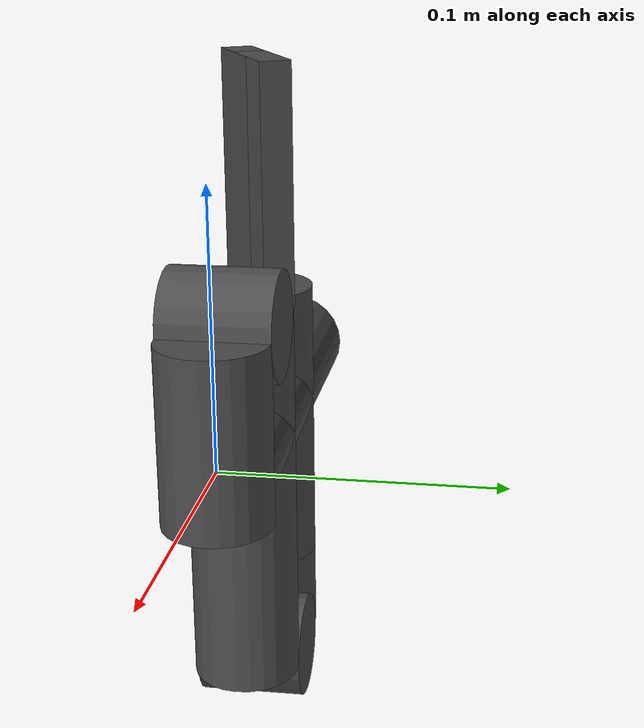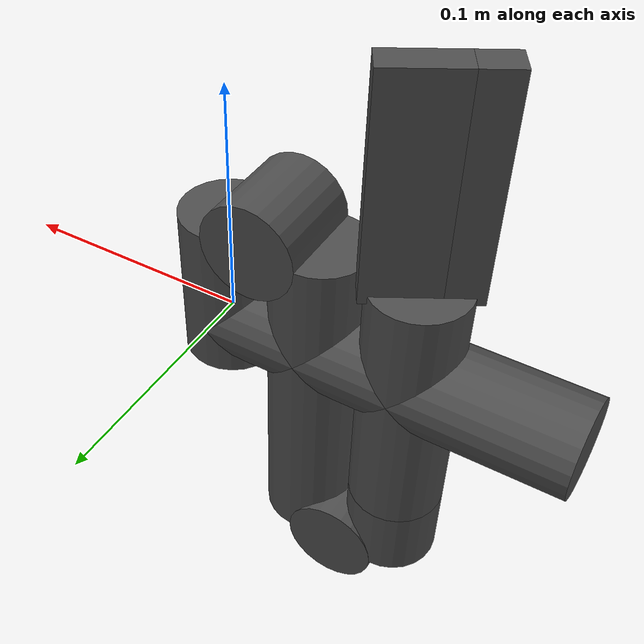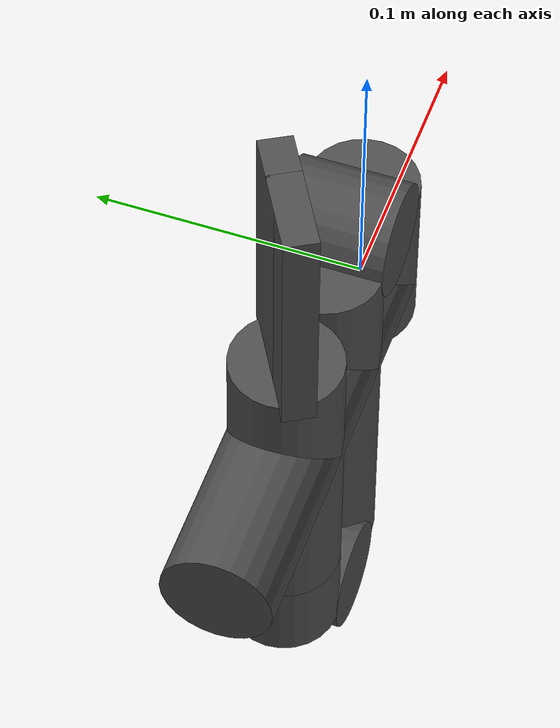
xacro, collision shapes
<?xml version="1.0"?>
<!-- Revolute-Revolute Manipulator -->
<!--
Copied and modified from ROS1 example -
https://github.com/ros-simulation/gazebo_ros_demos/blob/kinetic-devel/rrbot_description/urdf/rrbot.xacro
-->
<robot xmlns:xacro="http://www.ros.org/wiki/xacro" name="alpha_5_example">

  <!-- Enable setting arguments from the launch file -->
  <xacro:arg name="use_mock_hardware" default="false" />
  <xacro:arg name="prefix" default="alpha" />
  <xacro:arg name="slowdown" default="100.0" />
  <xacro:arg name="serial_port" default="/dev/ttyUSB0"/>
  <xacro:arg name="state_update_frequency" default="250"/>

  <!-- Import RRBot macro -->
  <xacro:include filename="$(find ros2_control_reach_5)/urdf/alpha_5.urdf.xacro"/>

  <!-- Import RRBot ros2_control description -->
  <xacro:include filename="$(find ros2_control_reach_5)/ros2_control/robot_system_multi_interface.ros2_control.xacro" />

  <!-- Used for fixing robot -->
  <link name="base_link"/>

  <xacro:alpha_5 parent="base_link" name="$(arg prefix)">
    <origin xyz="0 0 0" rpy="0 0 0" />
  </xacro:alpha_5>

  <xacro:robot_system_multi_interface
    name="ReachSystemMultiInterface"
    prefix="$(arg prefix)"
    serial_port="$(arg serial_port)"
    state_update_frequency="$(arg state_update_frequency)"
    use_mock_hardware="$(arg use_mock_hardware)"
    slowdown="$(arg slowdown)" />

</robot>

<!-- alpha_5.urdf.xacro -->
<robot name="alpha_5" xmlns:xacro="http://ros.org/wiki/xacro">
    <xacro:macro name="alpha_5" params="parent *origin name:=alpha_5">
        <joint name="${name}_joint" type="fixed">
            <xacro:insert_block name="origin" />
            <parent link="${parent}"/>
            <child link="${name}_base_link" />
        </joint>

        <material name="alpha_black">
            <color rgba="0.3 0.3 0.3 1"/>
        </material>
        <link name="${name}_base_link"/>
        <link name="${name}_m3_inline_link">
            <inertial>
                <origin xyz="-75e-3 -6e-3 -3e-3" rpy="0 0 0"/>
                <mass value="0.341"/>
                <inertia ixx="83.66e-6"  ixy="14.45e-6"  ixz="-38.270e-6" iyy="998.81e-6" iyz="3.14e-6" izz="1003.60e-6" />
            </inertial>
            <visual>
                <geometry>
                    <mesh filename="package://ros2_control_reach_5/meshes/M3-INLINE.stl"/>
                </geometry>
                <origin rpy="0 0 0" xyz="0 0 0"/>
                <material name="alpha_black"/>
            </visual>
            <collision>
                <geometry>
                    <cylinder length="0.150" radius="0.020" />
                </geometry>
                <origin rpy="0 1.57075 0" xyz="-0.075 0 0" />
            </collision>

        </link>
        <joint name="${name}_base_link_joint" type="fixed">
            <parent link="${name}_base_link"/>
            <child link="${name}_m3_inline_link"/>
            <origin rpy="0 0 0"/>
        </joint>
        <link name="${name}_m2_1_1_link">
            <inertial>
                <origin xyz="0.042 0.009 0.142" rpy="0 0 0"/>
                <mass value="0.194"/>
                <inertia ixx="8.000"  ixy="-0.283"  ixz="0.289" iyy="7.922" iyz="0.074" izz="0.318" />
            </inertial>
            <visual>
                <geometry>
                    <mesh filename="package://ros2_control_reach_5/meshes/M2-1-1.stl"/>
                </geometry>
                <origin rpy="0 0 0" xyz="0 0 0"/>
                <material name="${name}_black"/>
            </visual>
            <collision>
                <geometry>
                    <cylinder length="0.066" radius="0.020" />
                </geometry>
                <origin rpy="0 0 0" xyz="0 0 0.000" />
            </collision>
        </link>
        <joint name="${name}_axis_e" type="revolute">
            <parent link="${name}_m3_inline_link"/>
            <child link="${name}_m2_1_1_link"/>
            <origin xyz="0 0 0.014"/>
            <axis xyz="0 0 1"/>
            <limit effort="9.0" lower="0.0" upper="6.3" velocity="0.5"/>
        </joint>
        <link name="${name}_m2_joint_link">
            <inertial>
                <origin xyz="0.013 -0.003 -0.021" rpy="0 0 0"/>
                <mass value="0.429"/>
                <inertia ixx="0.795"  ixy="-2.240"  ixz="0.412" iyy="0.574" iyz="-0.359" izz="0.511" />
            </inertial>
            <visual>
                <geometry>
                    <mesh filename="package://ros2_control_reach_5/meshes/M2.stl"/>
                </geometry>
                <origin rpy="0 0 0" xyz="0 0 0"/>
                <material name="${name}_black"/>
            </visual>
            <collision>
                <geometry>
                    <cylinder length="0.145" radius="0.020" />
                </geometry>
                <origin rpy="0 0 0" xyz="-0.02 0 -0.0725" />
            </collision>
            <collision>
                <geometry>
                    <cylinder length="0.040" radius="0.020" />
                </geometry>
                <origin rpy="1.5707 0 0" xyz="0 0 0" />
            </collision>

            <collision>
                <geometry>
                    <cylinder length="0.040" radius="0.020" />
                </geometry>
                <origin rpy="1.5707 0 0" xyz="-0.040 0 -0.1453" />
            </collision>
        </link>
        <joint name="${name}_axis_d" type="revolute">
            <parent link="${name}_m2_1_1_link"/>
            <child link="${name}_m2_joint_link"/>
            <origin xyz="-0.02 0 0.033"/>
            <axis xyz="0 1 0"/>
            <limit effort="9.0" lower="0.0" upper="3.8" velocity="0.5"/>
        </joint>
        <link name="${name}_m2_1_2_link">
            <inertial>
                <origin xyz="0.027 0.034 0.030" rpy="0 0 0"/>
                <mass value="0.115"/>
                <inertia ixx="0.529"  ixy="-0.899"  ixz="-0.072" iyy="0.255" iyz="-0.064" izz="0.692" />
            </inertial>
            <visual>
                <geometry>
                    <mesh filename="package://ros2_control_reach_5/meshes/M2-1-3.stl"/>
                </geometry>
                <origin rpy="0 0 0" xyz="0 0 0"/>
                <material name="${name}_black"/>
            </visual>

            <collision>
                <geometry>
                    <cylinder length="0.033" radius="0.020" />
                </geometry>
                <origin rpy="0 0 0" xyz="0.02 0 0.0165" />
            </collision>
        </link>
        <joint name="${name}_axis_c" type="revolute">
            <parent link="${name}_m2_joint_link"/>
            <child link="${name}_m2_1_2_link"/>
            <origin xyz="-0.04 0 -0.1453" rpy="0 0 3.14159"/>
            <axis xyz="0 1 0"/>
            <limit effort="9.0" lower="0.0" upper="3.5" velocity="0.5"/>
        </joint>
        <link name="${name}_m1_link">
            <inertial>
                <origin xyz="-0.027 0.006 -0.004" rpy="0 0 0"/>
                <mass value="0.333"/>
                <inertia ixx="0.268"  ixy="-0.144"  ixz="0.049" iyy="0.387" iyz="-0.211" izz="0.260" />
            </inertial>
            <visual>
                <geometry>
                    <mesh filename="package://ros2_control_reach_5/meshes/RS1-100-101-123.stl"/>
                </geometry>
                <origin rpy="0 -1.5707 0" xyz="0 0 0"/>
                <material name="${name}_black"/>
            </visual>

            <collision>
                <geometry>
                    <cylinder length="0.10975" radius="0.020" />
                </geometry>
                <origin rpy="0 0 0" xyz="0.00 0 0.054875" />
            </collision>
        </link>
        <joint name="${name}_axis_b" type="revolute">
            <parent link="${name}_m2_1_2_link"/>
            <child link="${name}_m1_link"/>
            <origin xyz="0.02 0 0.033" rpy="0 0 2.09439"/>
            <axis xyz="0 0 -1"/>
            <limit effort="9.0" lower="0.0" upper="6.2" velocity="0.5"/>
        </joint>
        <material name="${name}_jaws_black">
            <color rgba="0.3 0.3 0.3 1"/>
        </material>
        <joint name="${name}_jaws_joint" type="fixed">
            <origin rpy="0 0 0" xyz="0 0 0.09975"/>
            <parent link="${name}_m1_link"/>
            <child link="${name}_jaws_base_link"/>
        </joint>
        <link name="${name}_jaws_base_link">

        </link>
        <link name="${name}_push_rod"/>
        <joint name="${name}_axis_a" type="prismatic">
            <origin rpy="0 0 0" xyz="0 0 0.009"/>
            <parent link="${name}_jaws_base_link"/>
            <child link="${name}_push_rod"/>
            <axis xyz="0 0 1"/>
            <limit effort="10" lower="0" upper="0.015" velocity="10"/>
        </joint>

        <xacro:include filename="$(find ros2_control_reach_5)/urdf/end_effectors/standard_jaws.urdf.xacro"/>
        <xacro:alpha_standard_jaws parent="${name}_jaws_base_link" name="${name}_standard_jaws" axis_a="${name}_axis_a">
            <origin xyz="0 0 0" rpy="0 0 0"/>
        </xacro:alpha_standard_jaws>

    </xacro:macro>
</robot>

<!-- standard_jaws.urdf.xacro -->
<robot name="alpha_standard_jaws" xmlns:xacro="http://ros.org/wiki/xacro">
    <xacro:macro name="alpha_standard_jaws" params="parent *origin name:=alpha_standard_jaws axis_a">
        <material name="${name}_black">
            <color rgba="0.3 0.3 0.3 1" />
        </material>

        <joint name="${name}_joint" type="fixed">
            <xacro:insert_block name="origin" />
            <parent link="${parent}"/>
            <child link="${name}_base_link" />
            <origin xyz="0 0 0" rpy="0 0 0"/>
        </joint>

        <link name="${name}_base_link">
            <visual>
                <geometry>
                    <mesh filename="package://ros2_control_reach_5/meshes/end_effectors/RS1-124.stl"/>
                </geometry>
                <material name="${name}_black"/>
            </visual>
        </link>

        <link name="${name}_rs1_130_link">
            <visual>
                <geometry>
                    <mesh filename="package://ros2_control_reach_5/meshes/end_effectors/RS1-130.stl"/>
                </geometry>
                <material name="${name}_black"/>
                <origin xyz="0 0 0" rpy="0 0 0"/>
            </visual>
            <collision>
                <geometry>
                    <box size="0.012 0.03 0.09"/>
                </geometry>
                <origin xyz="0.0 -0.008 0.045" rpy="0 0 0"/>
            </collision>
        </link>

        <joint name="${name}_rs1_130_joint" type="revolute">
          <origin xyz="0 0.0155 0.0069" rpy="0 0 0"/>
          <parent link="${name}_base_link"/>
          <child link="${name}_rs1_130_link"/>
          <axis xyz="-1 0 0"/>
          <limit lower="0" upper="0.5" effort="10" velocity="10"/>
          <mimic joint="${axis_a}" multiplier="51" offset="0"/>
        </joint>

        <link name="${name}_rs1_139_link">
            <visual>
                <geometry>
                    <mesh filename="package://ros2_control_reach_5/meshes/end_effectors/RS1-139.stl"/>
                </geometry>
                <material name="${name}_black"/>
                <origin xyz="0 0 0" rpy="0 0 0"/>
            </visual>

            <collision>
                <geometry>
                    <box size="0.012 0.03 0.09"/>
                </geometry>
                <origin xyz="0.0 0.008 0.045" rpy="0 0 0"/>
            </collision>
        </link>

        <joint name="${name}_rs1_139_joint" type="revolute">
          <origin xyz="0 -0.0155 0.0069" rpy="0 0 0"/>
          <parent link="${name}_base_link"/>
          <child link="${name}_rs1_139_link"/>
          <axis xyz="1 0 0"/>
          <limit lower="0" upper="0.5" effort="10" velocity="10"/>
          <mimic joint="${name}_rs1_130_joint" multiplier="1" offset="0"/>
        </joint>
    </xacro:macro>
</robot>
